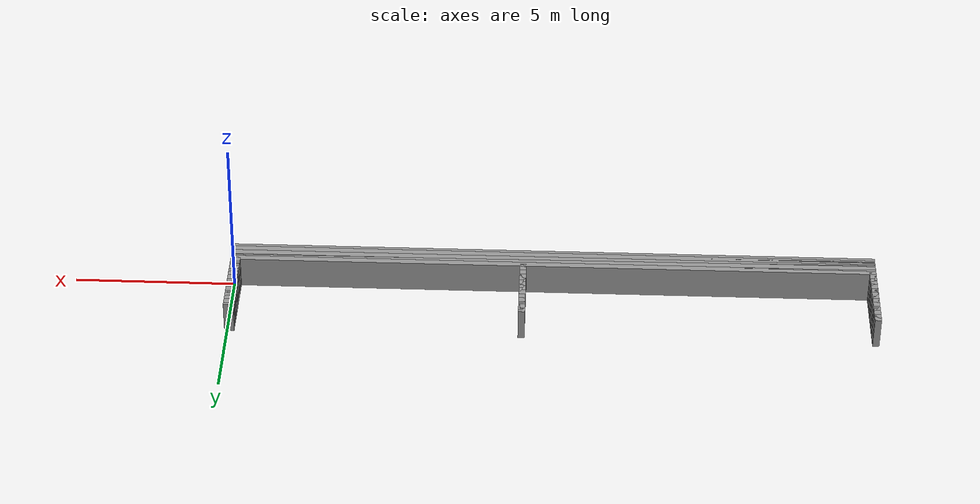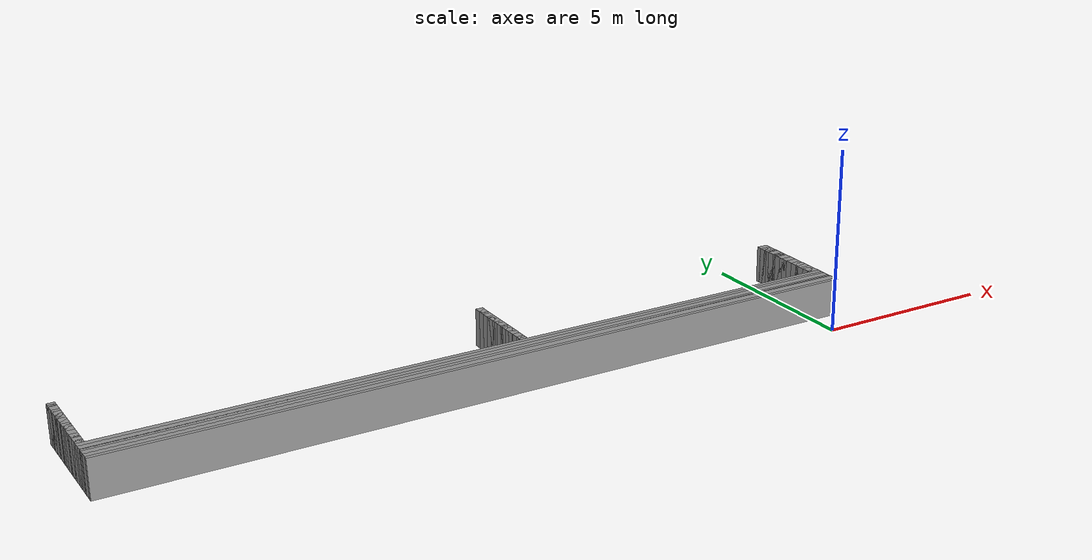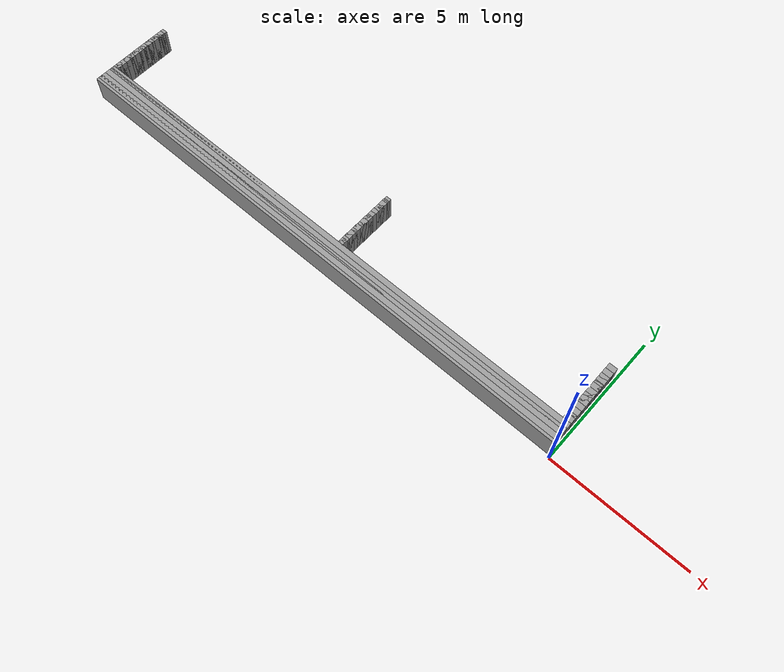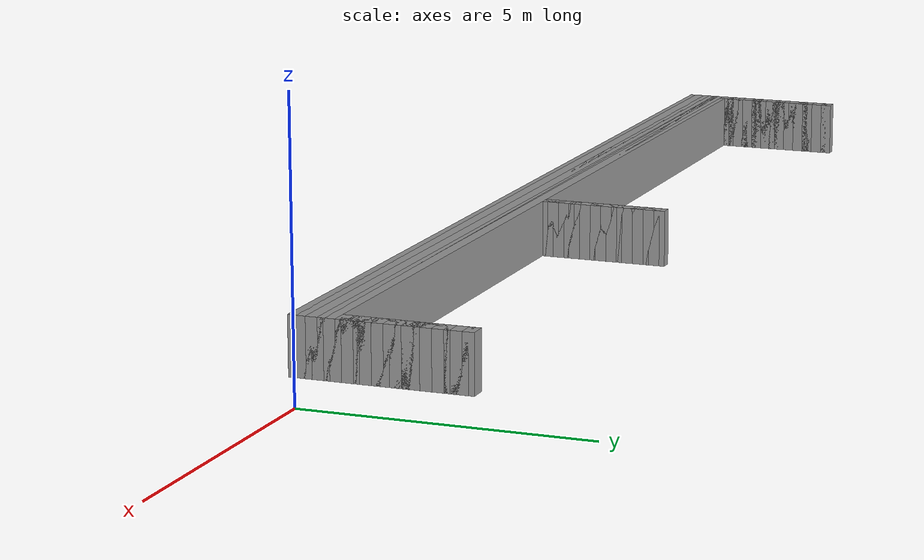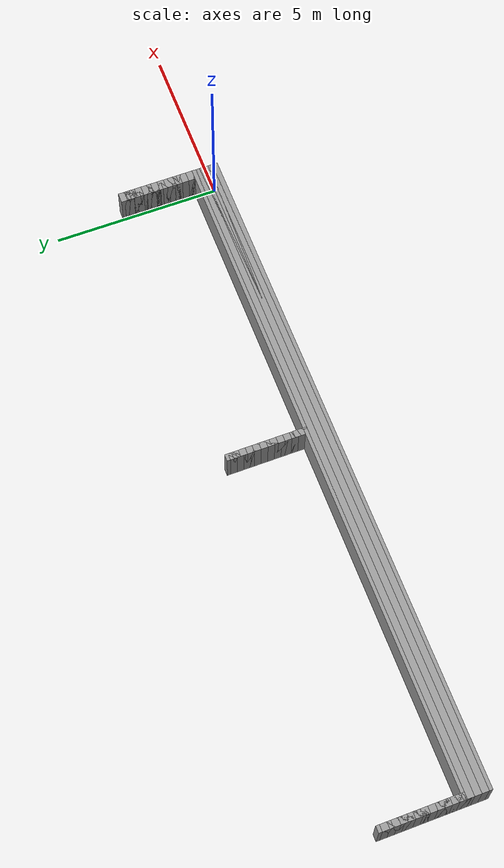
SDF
<sdf version="1.6">
 <world name="GridMap">
  <model name="GridMap">
   <link name="Wall_(99.5,0.0)">
    <collision name="Wall_(99.5,0.0)_Collision">
     <geometry><box><size>19.9 0.2 1.0</size></box></geometry>
     <pose>-9.95 0.0 0.5 0 -0 0</pose>
    </collision>
    <visual name="Wall_(99.5,0.0)_Visual">
     <geometry><box><size>19.9 0.2 1.0</size></box></geometry>
     <pose>-9.95 0.0 0.5 0 -0 0</pose>
     <material>
      <script><uri>file://media/materials/scripts/gazebo.material</uri><name>Gazebo/Grey</name></script>
      <ambient>1 1 1 1</ambient>
     </material>
     <meta><layer>0</layer></meta>
    </visual>
    <pose>0 0 0.5 0 -0 0</pose>
   </link>
   <link name="Wall_(99.5,1.0)">
    <collision name="Wall_(99.5,1.0)_Collision">
     <geometry><box><size>19.9 0.2 1.0</size></box></geometry>
     <pose>-9.95 0.1 0.5 0 -0 0</pose>
    </collision>
    <visual name="Wall_(99.5,1.0)_Visual">
     <geometry><box><size>19.9 0.2 1.0</size></box></geometry>
     <pose>-9.95 0.1 0.5 0 -0 0</pose>
     <material>
      <script><uri>file://media/materials/scripts/gazebo.material</uri><name>Gazebo/Grey</name></script>
      <ambient>1 1 1 1</ambient>
     </material>
     <meta><layer>0</layer></meta>
    </visual>
    <pose>0 0 0.5 0 -0 0</pose>
   </link>
   <link name="Wall_(99.5,2.0)">
    <collision name="Wall_(99.5,2.0)_Collision">
     <geometry><box><size>19.9 0.2 1.0</size></box></geometry>
     <pose>-9.95 0.2 0.5 0 -0 0</pose>
    </collision>
    <visual name="Wall_(99.5,2.0)_Visual">
     <geometry><box><size>19.9 0.2 1.0</size></box></geometry>
     <pose>-9.95 0.2 0.5 0 -0 0</pose>
     <material>
      <script><uri>file://media/materials/scripts/gazebo.material</uri><name>Gazebo/Grey</name></script>
      <ambient>1 1 1 1</ambient>
     </material>
     <meta><layer>0</layer></meta>
    </visual>
    <pose>0 0 0.5 0 -0 0</pose>
   </link>
   <link name="Wall_(99.5,3.0)">
    <collision name="Wall_(99.5,3.0)_Collision">
     <geometry><box><size>19.9 0.2 1.0</size></box></geometry>
     <pose>-9.95 0.3 0.5 0 -0 0</pose>
    </collision>
    <visual name="Wall_(99.5,3.0)_Visual">
     <geometry><box><size>19.9 0.2 1.0</size></box></geometry>
     <pose>-9.95 0.3 0.5 0 -0 0</pose>
     <material>
      <script><uri>file://media/materials/scripts/gazebo.material</uri><name>Gazebo/Grey</name></script>
      <ambient>1 1 1 1</ambient>
     </material>
     <meta><layer>0</layer></meta>
    </visual>
    <pose>0 0 0.5 0 -0 0</pose>
   </link>
   <link name="Wall_(99.5,4.0)">
    <collision name="Wall_(99.5,4.0)_Collision">
     <geometry><box><size>19.9 0.2 1.0</size></box></geometry>
     <pose>-9.95 0.4 0.5 0 -0 0</pose>
    </collision>
    <visual name="Wall_(99.5,4.0)_Visual">
     <geometry><box><size>19.9 0.2 1.0</size></box></geometry>
     <pose>-9.95 0.4 0.5 0 -0 0</pose>
     <material>
      <script><uri>file://media/materials/scripts/gazebo.material</uri><name>Gazebo/Grey</name></script>
      <ambient>1 1 1 1</ambient>
     </material>
     <meta><layer>0</layer></meta>
    </visual>
    <pose>0 0 0.5 0 -0 0</pose>
   </link>
   <link name="Wall_(99.5,5.0)">
    <collision name="Wall_(99.5,5.0)_Collision">
     <geometry><box><size>19.9 0.2 1.0</size></box></geometry>
     <pose>-9.95 0.5 0.5 0 -0 0</pose>
    </collision>
    <visual name="Wall_(99.5,5.0)_Visual">
     <geometry><box><size>19.9 0.2 1.0</size></box></geometry>
     <pose>-9.95 0.5 0.5 0 -0 0</pose>
     <material>
      <script><uri>file://media/materials/scripts/gazebo.material</uri><name>Gazebo/Grey</name></script>
      <ambient>1 1 1 1</ambient>
     </material>
     <meta><layer>0</layer></meta>
    </visual>
    <pose>0 0 0.5 0 -0 0</pose>
   </link>
   <link name="Wall_(99.5,6.0)">
    <collision name="Wall_(99.5,6.0)_Collision">
     <geometry><box><size>19.9 0.2 1.0</size></box></geometry>
     <pose>-9.95 0.6 0.5 0 -0 0</pose>
    </collision>
    <visual name="Wall_(99.5,6.0)_Visual">
     <geometry><box><size>19.9 0.2 1.0</size></box></geometry>
     <pose>-9.95 0.6 0.5 0 -0 0</pose>
     <material>
      <script><uri>file://media/materials/scripts/gazebo.material</uri><name>Gazebo/Grey</name></script>
      <ambient>1 1 1 1</ambient>
     </material>
     <meta><layer>0</layer></meta>
    </visual>
    <pose>0 0 0.5 0 -0 0</pose>
   </link>
   <link name="Wall_(1.5,7.0)">
    <collision name="Wall_(1.5,7.0)_Collision">
     <geometry><box><size>0.3 0.2 1.0</size></box></geometry>
     <pose>-0.15 0.7 0.5 0 -0 0</pose>
    </collision>
    <visual name="Wall_(1.5,7.0)_Visual">
     <geometry><box><size>0.3 0.2 1.0</size></box></geometry>
     <pose>-0.15 0.7 0.5 0 -0 0</pose>
     <material>
      <script><uri>file://media/materials/scripts/gazebo.material</uri><name>Gazebo/Grey</name></script>
      <ambient>1 1 1 1</ambient>
     </material>
     <meta><layer>0</layer></meta>
    </visual>
    <pose>0 0 0.5 0 -0 0</pose>
   </link>
   <link name="Wall_(90.5,7.0)">
    <collision name="Wall_(90.5,7.0)_Collision">
     <geometry><box><size>0.2 0.2 1.0</size></box></geometry>
     <pose>-9.05 0.7 0.5 0 -0 0</pose>
    </collision>
    <visual name="Wall_(90.5,7.0)_Visual">
     <geometry><box><size>0.2 0.2 1.0</size></box></geometry>
     <pose>-9.05 0.7 0.5 0 -0 0</pose>
     <material>
      <script><uri>file://media/materials/scripts/gazebo.material</uri><name>Gazebo/Grey</name></script>
      <ambient>1 1 1 1</ambient>
     </material>
     <meta><layer>0</layer></meta>
    </visual>
    <pose>0 0 0.5 0 -0 0</pose>
   </link>
   <link name="Wall_(198.0,7.0)">
    <collision name="Wall_(198.0,7.0)_Collision">
     <geometry><box><size>0.2 0.2 1.0</size></box></geometry>
     <pose>-19.8 0.7 0.5 0 -0 0</pose>
    </collision>
    <visual name="Wall_(198.0,7.0)_Visual">
     <geometry><box><size>0.2 0.2 1.0</size></box></geometry>
     <pose>-19.8 0.7 0.5 0 -0 0</pose>
     <material>
      <script><uri>file://media/materials/scripts/gazebo.material</uri><name>Gazebo/Grey</name></script>
      <ambient>1 1 1 1</ambient>
     </material>
     <meta><layer>0</layer></meta>
    </visual>
    <pose>0 0 0.5 0 -0 0</pose>
   </link>
   <link name="Wall_(1.5,8.0)">
    <collision name="Wall_(1.5,8.0)_Collision">
     <geometry><box><size>0.3 0.2 1.0</size></box></geometry>
     <pose>-0.15 0.8 0.5 0 -0 0</pose>
    </collision>
    <visual name="Wall_(1.5,8.0)_Visual">
     <geometry><box><size>0.3 0.2 1.0</size></box></geometry>
     <pose>-0.15 0.8 0.5 0 -0 0</pose>
     <material>
      <script><uri>file://media/materials/scripts/gazebo.material</uri><name>Gazebo/Grey</name></script>
      <ambient>1 1 1 1</ambient>
     </material>
     <meta><layer>0</layer></meta>
    </visual>
    <pose>0 0 0.5 0 -0 0</pose>
   </link>
   <link name="Wall_(90.5,8.0)">
    <collision name="Wall_(90.5,8.0)_Collision">
     <geometry><box><size>0.2 0.2 1.0</size></box></geometry>
     <pose>-9.05 0.8 0.5 0 -0 0</pose>
    </collision>
    <visual name="Wall_(90.5,8.0)_Visual">
     <geometry><box><size>0.2 0.2 1.0</size></box></geometry>
     <pose>-9.05 0.8 0.5 0 -0 0</pose>
     <material>
      <script><uri>file://media/materials/scripts/gazebo.material</uri><name>Gazebo/Grey</name></script>
      <ambient>1 1 1 1</ambient>
     </material>
     <meta><layer>0</layer></meta>
    </visual>
    <pose>0 0 0.5 0 -0 0</pose>
   </link>
   <link name="Wall_(198.0,8.0)">
    <collision name="Wall_(198.0,8.0)_Collision">
     <geometry><box><size>0.2 0.2 1.0</size></box></geometry>
     <pose>-19.8 0.8 0.5 0 -0 0</pose>
    </collision>
    <visual name="Wall_(198.0,8.0)_Visual">
     <geometry><box><size>0.2 0.2 1.0</size></box></geometry>
     <pose>-19.8 0.8 0.5 0 -0 0</pose>
     <material>
      <script><uri>file://media/materials/scripts/gazebo.material</uri><name>Gazebo/Grey</name></script>
      <ambient>1 1 1 1</ambient>
     </material>
     <meta><layer>0</layer></meta>
    </visual>
    <pose>0 0 0.5 0 -0 0</pose>
   </link>
   <link name="Wall_(1.5,9.0)">
    <collision name="Wall_(1.5,9.0)_Collision">
     <geometry><box><size>0.3 0.2 1.0</size></box></geometry>
     <pose>-0.15 0.9 0.5 0 -0 0</pose>
    </collision>
    <visual name="Wall_(1.5,9.0)_Visual">
     <geometry><box><size>0.3 0.2 1.0</size></box></geometry>
     <pose>-0.15 0.9 0.5 0 -0 0</pose>
     <material>
      <script><uri>file://media/materials/scripts/gazebo.material</uri><name>Gazebo/Grey</name></script>
      <ambient>1 1 1 1</ambient>
     </material>
     <meta><layer>0</layer></meta>
    </visual>
    <pose>0 0 0.5 0 -0 0</pose>
   </link>
   <link name="Wall_(90.5,9.0)">
    <collision name="Wall_(90.5,9.0)_Collision">
     <geometry><box><size>0.2 0.2 1.0</size></box></geometry>
     <pose>-9.05 0.9 0.5 0 -0 0</pose>
    </collision>
    <visual name="Wall_(90.5,9.0)_Visual">
     <geometry><box><size>0.2 0.2 1.0</size></box></geometry>
     <pose>-9.05 0.9 0.5 0 -0 0</pose>
     <material>
      <script><uri>file://media/materials/scripts/gazebo.material</uri><name>Gazebo/Grey</name></script>
      <ambient>1 1 1 1</ambient>
     </material>
     <meta><layer>0</layer></meta>
    </visual>
    <pose>0 0 0.5 0 -0 0</pose>
   </link>
   <link name="Wall_(198.0,9.0)">
    <collision name="Wall_(198.0,9.0)_Collision">
     <geometry><box><size>0.2 0.2 1.0</size></box></geometry>
     <pose>-19.8 0.9 0.5 0 -0 0</pose>
    </collision>
    <visual name="Wall_(198.0,9.0)_Visual">
     <geometry><box><size>0.2 0.2 1.0</size></box></geometry>
     <pose>-19.8 0.9 0.5 0 -0 0</pose>
     <material>
      <script><uri>file://media/materials/scripts/gazebo.material</uri><name>Gazebo/Grey</name></script>
      <ambient>1 1 1 1</ambient>
     </material>
     <meta><layer>0</layer></meta>
    </visual>
    <pose>0 0 0.5 0 -0 0</pose>
   </link>
   <link name="Wall_(1.5,10.0)">
    <collision name="Wall_(1.5,10.0)_Collision">
     <geometry><box><size>0.3 0.2 1.0</size></box></geometry>
     <pose>-0.15 1.0 0.5 0 -0 0</pose>
    </collision>
    <visual name="Wall_(1.5,10.0)_Visual">
     <geometry><box><size>0.3 0.2 1.0</size></box></geometry>
     <pose>-0.15 1.0 0.5 0 -0 0</pose>
     <material>
      <script><uri>file://media/materials/scripts/gazebo.material</uri><name>Gazebo/Grey</name></script>
      <ambient>1 1 1 1</ambient>
     </material>
     <meta><layer>0</layer></meta>
    </visual>
    <pose>0 0 0.5 0 -0 0</pose>
   </link>
   <link name="Wall_(90.5,10.0)">
    <collision name="Wall_(90.5,10.0)_Collision">
     <geometry><box><size>0.2 0.2 1.0</size></box></geometry>
     <pose>-9.05 1.0 0.5 0 -0 0</pose>
    </collision>
    <visual name="Wall_(90.5,10.0)_Visual">
     <geometry><box><size>0.2 0.2 1.0</size></box></geometry>
     <pose>-9.05 1.0 0.5 0 -0 0</pose>
     <material>
      <script><uri>file://media/materials/scripts/gazebo.material</uri><name>Gazebo/Grey</name></script>
      <ambient>1 1 1 1</ambient>
     </material>
     <meta><layer>0</layer></meta>
    </visual>
    <pose>0 0 0.5 0 -0 0</pose>
   </link>
   <link name="Wall_(198.0,10.0)">
    <collision name="Wall_(198.0,10.0)_Collision">
     <geometry><box><size>0.2 0.2 1.0</size></box></geometry>
     <pose>-19.8 1.0 0.5 0 -0 0</pose>
    </collision>
    <visual name="Wall_(198.0,10.0)_Visual">
     <geometry><box><size>0.2 0.2 1.0</size></box></geometry>
     <pose>-19.8 1.0 0.5 0 -0 0</pose>
     <material>
      <script><uri>file://media/materials/scripts/gazebo.material</uri><name>Gazebo/Grey</name></script>
      <ambient>1 1 1 1</ambient>
     </material>
     <meta><layer>0</layer></meta>
    </visual>
    <pose>0 0 0.5 0 -0 0</pose>
   </link>
   <link name="Wall_(1.5,11.0)">
    <collision name="Wall_(1.5,11.0)_Collision">
     <geometry><box><size>0.3 0.2 1.0</size></box></geometry>
     <pose>-0.15 1.1 0.5 0 -0 0</pose>
    </collision>
    <visual name="Wall_(1.5,11.0)_Visual">
     <geometry><box><size>0.3 0.2 1.0</size></box></geometry>
     <pose>-0.15 1.1 0.5 0 -0 0</pose>
     <material>
      <script><uri>file://media/materials/scripts/gazebo.material</uri><name>Gazebo/Grey</name></script>
      <ambient>1 1 1 1</ambient>
     </material>
     <meta><layer>0</layer></meta>
    </visual>
    <pose>0 0 0.5 0 -0 0</pose>
   </link>
   <link name="Wall_(90.5,11.0)">
    <collision name="Wall_(90.5,11.0)_Collision">
     <geometry><box><size>0.2 0.2 1.0</size></box></geometry>
     <pose>-9.05 1.1 0.5 0 -0 0</pose>
    </collision>
    <visual name="Wall_(90.5,11.0)_Visual">
     <geometry><box><size>0.2 0.2 1.0</size></box></geometry>
     <pose>-9.05 1.1 0.5 0 -0 0</pose>
     <material>
      <script><uri>file://media/materials/scripts/gazebo.material</uri><name>Gazebo/Grey</name></script>
      <ambient>1 1 1 1</ambient>
     </material>
     <meta><layer>0</layer></meta>
    </visual>
    <pose>0 0 0.5 0 -0 0</pose>
   </link>
   <link name="Wall_(198.0,11.0)">
    <collision name="Wall_(198.0,11.0)_Collision">
     <geometry><box><size>0.2 0.2 1.0</size></box></geometry>
     <pose>-19.8 1.1 0.5 0 -0 0</pose>
    </collision>
    <visual name="Wall_(198.0,11.0)_Visual">
     <geometry><box><size>0.2 0.2 1.0</size></box></geometry>
     <pose>-19.8 1.1 0.5 0 -0 0</pose>
     <material>
      <script><uri>file://media/materials/scripts/gazebo.material</uri><name>Gazebo/Grey</name></script>
      <ambient>1 1 1 1</ambient>
     </material>
     <meta><layer>0</layer></meta>
    </visual>
    <pose>0 0 0.5 0 -0 0</pose>
   </link>
   <link name="Wall_(1.5,12.0)">
    <collision name="Wall_(1.5,12.0)_Collision">
     <geometry><box><size>0.3 0.2 1.0</size></box></geometry>
     <pose>-0.15 1.2 0.5 0 -0 0</pose>
    </collision>
    <visual name="Wall_(1.5,12.0)_Visual">
     <geometry><box><size>0.3 0.2 1.0</size></box></geometry>
     <pose>-0.15 1.2 0.5 0 -0 0</pose>
     <material>
      <script><uri>file://media/materials/scripts/gazebo.material</uri><name>Gazebo/Grey</name></script>
      <ambient>1 1 1 1</ambient>
     </material>
     <meta><layer>0</layer></meta>
    </visual>
    <pose>0 0 0.5 0 -0 0</pose>
   </link>
   <link name="Wall_(90.5,12.0)">
    <collision name="Wall_(90.5,12.0)_Collision">
     <geometry><box><size>0.2 0.2 1.0</size></box></geometry>
     <pose>-9.05 1.2 0.5 0 -0 0</pose>
    </collision>
    <visual name="Wall_(90.5,12.0)_Visual">
     <geometry><box><size>0.2 0.2 1.0</size></box></geometry>
     <pose>-9.05 1.2 0.5 0 -0 0</pose>
     <material>
      <script><uri>file://media/materials/scripts/gazebo.material</uri><name>Gazebo/Grey</name></script>
      <ambient>1 1 1 1</ambient>
     </material>
     <meta><layer>0</layer></meta>
    </visual>
    <pose>0 0 0.5 0 -0 0</pose>
   </link>
   <link name="Wall_(198.0,12.0)">
    <collision name="Wall_(198.0,12.0)_Collision">
     <geometry><box><size>0.2 0.2 1.0</size></box></geometry>
     <pose>-19.8 1.2 0.5 0 -0 0</pose>
    </collision>
    <visual name="Wall_(198.0,12.0)_Visual">
     <geometry><box><size>0.2 0.2 1.0</size></box></geometry>
     <pose>-19.8 1.2 0.5 0 -0 0</pose>
     <material>
      <script><uri>file://media/materials/scripts/gazebo.material</uri><name>Gazebo/Grey</name></script>
      <ambient>1 1 1 1</ambient>
     </material>
     <meta><layer>0</layer></meta>
    </visual>
    <pose>0 0 0.5 0 -0 0</pose>
   </link>
   <link name="Wall_(1.5,13.0)">
    <collision name="Wall_(1.5,13.0)_Collision">
     <geometry><box><size>0.3 0.2 1.0</size></box></geometry>
     <pose>-0.15 1.3 0.5 0 -0 0</pose>
    </collision>
    <visual name="Wall_(1.5,13.0)_Visual">
     <geometry><box><size>0.3 0.2 1.0</size></box></geometry>
     <pose>-0.15 1.3 0.5 0 -0 0</pose>
     <material>
      <script><uri>file://media/materials/scripts/gazebo.material</uri><name>Gazebo/Grey</name></script>
      <ambient>1 1 1 1</ambient>
     </material>
     <meta><layer>0</layer></meta>
    </visual>
    <pose>0 0 0.5 0 -0 0</pose>
   </link>
   <link name="Wall_(90.5,13.0)">
    <collision name="Wall_(90.5,13.0)_Collision">
     <geometry><box><size>0.2 0.2 1.0</size></box></geometry>
     <pose>-9.05 1.3 0.5 0 -0 0</pose>
    </collision>
    <visual name="Wall_(90.5,13.0)_Visual">
     <geometry><box><size>0.2 0.2 1.0</size></box></geometry>
     <pose>-9.05 1.3 0.5 0 -0 0</pose>
     <material>
      <script><uri>file://media/materials/scripts/gazebo.material</uri><name>Gazebo/Grey</name></script>
      <ambient>1 1 1 1</ambient>
     </material>
     <meta><layer>0</layer></meta>
    </visual>
    <pose>0 0 0.5 0 -0 0</pose>
   </link>
   <link name="Wall_(198.0,13.0)">
    <collision name="Wall_(198.0,13.0)_Collision">
     <geometry><box><size>0.2 0.2 1.0</size></box></geometry>
     <pose>-19.8 1.3 0.5 0 -0 0</pose>
    </collision>
    <visual name="Wall_(198.0,13.0)_Visual">
     <geometry><box><size>0.2 0.2 1.0</size></box></geometry>
     <pose>-19.8 1.3 0.5 0 -0 0</pose>
     <material>
      <script><uri>file://media/materials/scripts/gazebo.material</uri><name>Gazebo/Grey</name></script>
      <ambient>1 1 1 1</ambient>
     </material>
     <meta><layer>0</layer></meta>
    </visual>
    <pose>0 0 0.5 0 -0 0</pose>
   </link>
   <link name="Wall_(1.5,14.0)">
    <collision name="Wall_(1.5,14.0)_Collision">
     <geometry><box><size>0.3 0.2 1.0</size></box></geometry>
     <pose>-0.15 1.4 0.5 0 -0 0</pose>
    </collision>
    <visual name="Wall_(1.5,14.0)_Visual">
     <geometry><box><size>0.3 0.2 1.0</size></box></geometry>
     <pose>-0.15 1.4 0.5 0 -0 0</pose>
     <material>
      <script><uri>file://media/materials/scripts/gazebo.material</uri><name>Gazebo/Grey</name></script>
      <ambient>1 1 1 1</ambient>
     </material>
     <meta><layer>0</layer></meta>
    </visual>
    <pose>0 0 0.5 0 -0 0</pose>
   </link>
   <link name="Wall_(90.5,14.0)">
    <collision name="Wall_(90.5,14.0)_Collision">
     <geometry><box><size>0.2 0.2 1.0</size></box></geometry>
     <pose>-9.05 1.4 0.5 0 -0 0</pose>
    </collision>
    <visual name="Wall_(90.5,14.0)_Visual">
     <geometry><box><size>0.2 0.2 1.0</size></box></geometry>
     <pose>-9.05 1.4 0.5 0 -0 0</pose>
     <material>
      <script><uri>file://media/materials/scripts/gazebo.material</uri><name>Gazebo/Grey</name></script>
      <ambient>1 1 1 1</ambient>
     </material>
     <meta><layer>0</layer></meta>
    </visual>
    <pose>0 0 0.5 0 -0 0</pose>
   </link>
   <link name="Wall_(198.0,14.0)">
    <collision name="Wall_(198.0,14.0)_Collision">
     <geometry><box><size>0.2 0.2 1.0</size></box></geometry>
     <pose>-19.8 1.4 0.5 0 -0 0</pose>
    </collision>
    <visual name="Wall_(198.0,14.0)_Visual">
     <geometry><box><size>0.2 0.2 1.0</size></box></geometry>
     <pose>-19.8 1.4 0.5 0 -0 0</pose>
     <material>
      <script><uri>file://media/materials/scripts/gazebo.material</uri><name>Gazebo/Grey</name></script>
      <ambient>1 1 1 1</ambient>
     </material>
     <meta><layer>0</layer></meta>
    </visual>
    <pose>0 0 0.5 0 -0 0</pose>
   </link>
   <link name="Wall_(1.5,15.0)">
    <collision name="Wall_(1.5,15.0)_Collision">
     <geometry><box><size>0.3 0.2 1.0</size></box></geometry>
     <pose>-0.15 1.5 0.5 0 -0 0</pose>
    </collision>
    <visual name="Wall_(1.5,15.0)_Visual">
     <geometry><box><size>0.3 0.2 1.0</size></box></geometry>
     <pose>-0.15 1.5 0.5 0 -0 0</pose>
     <material>
      <script><uri>file://media/materials/scripts/gazebo.material</uri><name>Gazebo/Grey</name></script>
      <ambient>1 1 1 1</ambient>
     </material>
     <meta><layer>0</layer></meta>
    </visual>
    <pose>0 0 0.5 0 -0 0</pose>
   </link>
   <link name="Wall_(90.5,15.0)">
    <collision name="Wall_(90.5,15.0)_Collision">
     <geometry><box><size>0.2 0.2 1.0</size></box></geometry>
     <pose>-9.05 1.5 0.5 0 -0 0</pose>
    </collision>
    <visual name="Wall_(90.5,15.0)_Visual">
     <geometry><box><size>0.2 0.2 1.0</size></box></geometry>
     <pose>-9.05 1.5 0.5 0 -0 0</pose>
     <material>
      <script><uri>file://media/materials/scripts/gazebo.material</uri><name>Gazebo/Grey</name></script>
      <ambient>1 1 1 1</ambient>
     </material>
     <meta><layer>0</layer></meta>
    </visual>
    <pose>0 0 0.5 0 -0 0</pose>
   </link>
   <link name="Wall_(198.0,15.0)">
    <collision name="Wall_(198.0,15.0)_Collision">
     <geometry><box><size>0.2 0.2 1.0</size></box></geometry>
     <pose>-19.8 1.5 0.5 0 -0 0</pose>
    </collision>
    <visual name="Wall_(198.0,15.0)_Visual">
     <geometry><box><size>0.2 0.2 1.0</size></box></geometry>
     <pose>-19.8 1.5 0.5 0 -0 0</pose>
     <material>
      <script><uri>file://media/materials/scripts/gazebo.material</uri><name>Gazebo/Grey</name></script>
      <ambient>1 1 1 1</ambient>
     </material>
     <meta><layer>0</layer></meta>
    </visual>
    <pose>0 0 0.5 0 -0 0</pose>
   </link>
   <link name="Wall_(1.5,16.0)">
    <collision name="Wall_(1.5,16.0)_Collision">
     <geometry><box><size>0.3 0.2 1.0</size></box></geometry>
     <pose>-0.15 1.6 0.5 0 -0 0</pose>
    </collision>
    <visual name="Wall_(1.5,16.0)_Visual">
     <geometry><box><size>0.3 0.2 1.0</size></box></geometry>
     <pose>-0.15 1.6 0.5 0 -0 0</pose>
     <material>
      <script><uri>file://media/materials/scripts/gazebo.material</uri><name>Gazebo/Grey</name></script>
      <ambient>1 1 1 1</ambient>
     </material>
     <meta><layer>0</layer></meta>
    </visual>
    <pose>0 0 0.5 0 -0 0</pose>
   </link>
   <link name="Wall_(90.5,16.0)">
    <collision name="Wall_(90.5,16.0)_Collision">
     <geometry><box><size>0.2 0.2 1.0</size></box></geometry>
     <pose>-9.05 1.6 0.5 0 -0 0</pose>
    </collision>
    <visual name="Wall_(90.5,16.0)_Visual">
     <geometry><box><size>0.2 0.2 1.0</size></box></geometry>
     <pose>-9.05 1.6 0.5 0 -0 0</pose>
     <material>
      <script><uri>file://media/materials/scripts/gazebo.material</uri><name>Gazebo/Grey</name></script>
      <ambient>1 1 1 1</ambient>
     </material>
     <meta><layer>0</layer></meta>
    </visual>
    <pose>0 0 0.5 0 -0 0</pose>
   </link>
   <link name="Wall_(198.0,16.0)">
    <collision name="Wall_(198.0,16.0)_Collision">
     <geometry><box><size>0.2 0.2 1.0</size></box></geometry>
     <pose>-19.8 1.6 0.5 0 -0 0</pose>
    </collision>
    <visual name="Wall_(198.0,16.0)_Visual">
     <geometry><box><size>0.2 0.2 1.0</size></box></geometry>
     <pose>-19.8 1.6 0.5 0 -0 0</pose>
     <material>
      <script><uri>file://media/materials/scripts/gazebo.material</uri><name>Gazebo/Grey</name></script>
      <ambient>1 1 1 1</ambient>
     </material>
     <meta><layer>0</layer></meta>
    </visual>
    <pose>0 0 0.5 0 -0 0</pose>
   </link>
   <link name="Wall_(1.5,17.0)">
    <collision name="Wall_(1.5,17.0)_Collision">
     <geometry><box><size>0.3 0.2 1.0</size></box></geometry>
     <pose>-0.15 1.7 0.5 0 -0 0</pose>
    </collision>
    <visual name="Wall_(1.5,17.0)_Visual">
     <geometry><box><size>0.3 0.2 1.0</size></box></geometry>
     <pose>-0.15 1.7 0.5 0 -0 0</pose>
     <material>
      <script><uri>file://media/materials/scripts/gazebo.material</uri><name>Gazebo/Grey</name></script>
      <ambient>1 1 1 1</ambient>
     </material>
     <meta><layer>0</layer></meta>
    </visual>
    <pose>0 0 0.5 0 -0 0</pose>
   </link>
   <link name="Wall_(90.5,17.0)">
    <collision name="Wall_(90.5,17.0)_Collision">
     <geometry><box><size>0.2 0.2 1.0</size></box></geometry>
     <pose>-9.05 1.7 0.5 0 -0 0</pose>
    </collision>
    <visual name="Wall_(90.5,17.0)_Visual">
     <geometry><box><size>0.2 0.2 1.0</size></box></geometry>
     <pose>-9.05 1.7 0.5 0 -0 0</pose>
     <material>
      <script><uri>file://media/materials/scripts/gazebo.material</uri><name>Gazebo/Grey</name></script>
      <ambient>1 1 1 1</ambient>
     </material>
     <meta><layer>0</layer></meta>
    </visual>
    <pose>0 0 0.5 0 -0 0</pose>
   </link>
   <link name="Wall_(198.0,17.0)">
    <collision name="Wall_(198.0,17.0)_Collision">
     <geometry><box><size>0.2 0.2 1.0</size></box></geometry>
     <pose>-19.8 1.7 0.5 0 -0 0</pose>
    </collision>
    <visual name="Wall_(198.0,17.0)_Visual">
     <geometry><box><size>0.2 0.2 1.0</size></box></geometry>
     <pose>-19.8 1.7 0.5 0 -0 0</pose>
     <material>
      <script><uri>file://media/materials/scripts/gazebo.material</uri><name>Gazebo/Grey</name></script>
      <ambient>1 1 1 1</ambient>
     </material>
     <meta><layer>0</layer></meta>
    </visual>
    <pose>0 0 0.5 0 -0 0</pose>
   </link>
   <link name="Wall_(1.5,18.0)">
    <collision name="Wall_(1.5,18.0)_Collision">
     <geometry><box><size>0.3 0.2 1.0</size></box></geometry>
     <pose>-0.15 1.8 0.5 0 -0 0</pose>
    </collision>
    <visual name="Wall_(1.5,18.0)_Visual">
     <geometry><box><size>0.3 0.2 1.0</size></box></geometry>
     <pose>-0.15 1.8 0.5 0 -0 0</pose>
     <material>
      <script><uri>file://media/materials/scripts/gazebo.material</uri><name>Gazebo/Grey</name></script>
      <ambient>1 1 1 1</ambient>
     </material>
     <meta><layer>0</layer></meta>
    </visual>
    <pose>0 0 0.5 0 -0 0</pose>
   </link>
   <link name="Wall_(90.5,18.0)">
    <collision name="Wall_(90.5,18.0)_Collision">
     <geometry><box><size>0.2 0.2 1.0</size></box></geometry>
     <pose>-9.05 1.8 0.5 0 -0 0</pose>
    </collision>
    <visual name="Wall_(90.5,18.0)_Visual">
     <geometry><box><size>0.2 0.2 1.0</size></box></geometry>
     <pose>-9.05 1.8 0.5 0 -0 0</pose>
     <material>
      <script><uri>file://media/materials/scripts/gazebo.material</uri><name>Gazebo/Grey</name></script>
      <ambient>1 1 1 1</ambient>
     </material>
     <meta><layer>0</layer></meta>
    </visual>
    <pose>0 0 0.5 0 -0 0</pose>
   </link>
   <link name="Wall_(198.0,18.0)">
    <collision name="Wall_(198.0,18.0)_Collision">
     <geometry><box><size>0.2 0.2 1.0</size></box></geometry>
     <pose>-19.8 1.8 0.5 0 -0 0</pose>
    </collision>
    <visual name="Wall_(198.0,18.0)_Visual">
     <geometry><box><size>0.2 0.2 1.0</size></box></geometry>
     <pose>-19.8 1.8 0.5 0 -0 0</pose>
     <material>
      <script><uri>file://media/materials/scripts/gazebo.material</uri><name>Gazebo/Grey</name></script>
      <ambient>1 1 1 1</ambient>
     </material>
     <meta><layer>0</layer></meta>
    </visual>
    <pose>0 0 0.5 0 -0 0</pose>
   </link>
   <link name="Wall_(1.5,19.0)">
    <collision name="Wall_(1.5,19.0)_Collision">
     <geometry><box><size>0.3 0.2 1.0</size></box></geometry>
     <pose>-0.15 1.9 0.5 0 -0 0</pose>
    </collision>
    <visual name="Wall_(1.5,19.0)_Visual">
     <geometry><box><size>0.3 0.2 1.0</size></box></geometry>
     <pose>-0.15 1.9 0.5 0 -0 0</pose>
     <material>
      <script><uri>file://media/materials/scripts/gazebo.material</uri><name>Gazebo/Grey</name></script>
      <ambient>1 1 1 1</ambient>
     </material>
     <meta><layer>0</layer></meta>
    </visual>
    <pose>0 0 0.5 0 -0 0</pose>
   </link>
   <link name="Wall_(90.5,19.0)">
    <collision name="Wall_(90.5,19.0)_Collision">
     <geometry><box><size>0.2 0.2 1.0</size></box></geometry>
     <pose>-9.05 1.9 0.5 0 -0 0</pose>
    </collision>
    <visual name="Wall_(90.5,19.0)_Visual">
     <geometry><box><size>0.2 0.2 1.0</size></box></geometry>
     <pose>-9.05 1.9 0.5 0 -0 0</pose>
     <material>
      <script><uri>file://media/materials/scripts/gazebo.material</uri><name>Gazebo/Grey</name></script>
      <ambient>1 1 1 1</ambient>
     </material>
     <meta><layer>0</layer></meta>
    </visual>
    <pose>0 0 0.5 0 -0 0</pose>
   </link>
   <link name="Wall_(198.0,19.0)">
    <collision name="Wall_(198.0,19.0)_Collision">
     <geometry><box><size>0.2 0.2 1.0</size></box></geometry>
     <pose>-19.8 1.9 0.5 0 -0 0</pose>
    </collision>
    <visual name="Wall_(198.0,19.0)_Visual">
     <geometry><box><size>0.2 0.2 1.0</size></box></geometry>
     <pose>-19.8 1.9 0.5 0 -0 0</pose>
     <material>
      <script><uri>file://media/materials/scripts/gazebo.material</uri><name>Gazebo/Grey</name></script>
      <ambient>1 1 1 1</ambient>
     </material>
     <meta><layer>0</layer></meta>
    </visual>
    <pose>0 0 0.5 0 -0 0</pose>
   </link>
   <link name="Wall_(1.5,20.0)">
    <collision name="Wall_(1.5,20.0)_Collision">
     <geometry><box><size>0.3 0.2 1.0</size></box></geometry>
     <pose>-0.15 2.0 0.5 0 -0 0</pose>
    </collision>
    <visual name="Wall_(1.5,20.0)_Visual">
     <geometry><box><size>0.3 0.2 1.0</size></box></geometry>
     <pose>-0.15 2.0 0.5 0 -0 0</pose>
     <material>
      <script><uri>file://media/materials/scripts/gazebo.material</uri><name>Gazebo/Grey</name></script>
      <ambient>1 1 1 1</ambient>
     </material>
     <meta><layer>0</layer></meta>
    </visual>
    <pose>0 0 0.5 0 -0 0</pose>
   </link>
   <link name="Wall_(90.5,20.0)">
    <collision name="Wall_(90.5,20.0)_Collision">
     <geometry><box><size>0.2 0.2 1.0</size></box></geometry>
     <pose>-9.05 2.0 0.5 0 -0 0</pose>
    </collision>
    <visual name="Wall_(90.5,20.0)_Visual">
     <geometry><box><size>0.2 0.2 1.0</size></box></geometry>
     <pose>-9.05 2.0 0.5 0 -0 0</pose>
     <material>
      <script><uri>file://media/materials/scripts/gazebo.material</uri><name>Gazebo/Grey</name></script>
      <ambient>1 1 1 1</ambient>
     </material>
     <meta><layer>0</layer></meta>
    </visual>
    <pose>0 0 0.5 0 -0 0</pose>
   </link>
   <link name="Wall_(198.0,20.0)">
    <collision name="Wall_(198.0,20.0)_Collision">
     <geometry><box><size>0.2 0.2 1.0</size></box></geometry>
     <pose>-19.8 2.0 0.5 0 -0 0</pose>
    </collision>
    <visual name="Wall_(198.0,20.0)_Visual">
     <geometry><box><size>0.2 0.2 1.0</size></box></geometry>
     <pose>-19.8 2.0 0.5 0 -0 0</pose>
     <material>
      <script><uri>file://media/materials/scripts/gazebo.material</uri><name>Gazebo/Grey</name></script>
      <ambient>1 1 1 1</ambient>
     </material>
     <meta><layer>0</layer></meta>
    </visual>
    <pose>0 0 0.5 0 -0 0</pose>
   </link>
   <link name="Wall_(1.5,21.0)">
    <collision name="Wall_(1.5,21.0)_Collision">
     <geometry><box><size>0.3 0.2 1.0</size></box></geometry>
     <pose>-0.15 2.1 0.5 0 -0 0</pose>
    </collision>
    <visual name="Wall_(1.5,21.0)_Visual">
     <geometry><box><size>0.3 0.2 1.0</size></box></geometry>
     <pose>-0.15 2.1 0.5 0 -0 0</pose>
     <material>
      <script><uri>file://media/materials/scripts/gazebo.material</uri><name>Gazebo/Grey</name></script>
      <ambient>1 1 1 1</ambient>
     </material>
     <meta><layer>0</layer></meta>
    </visual>
    <pose>0 0 0.5 0 -0 0</pose>
   </link>
   <link name="Wall_(90.5,21.0)">
    <collision name="Wall_(90.5,21.0)_Collision">
     <geometry><box><size>0.2 0.2 1.0</size></box></geometry>
     <pose>-9.05 2.1 0.5 0 -0 0</pose>
    </collision>
    <visual name="Wall_(90.5,21.0)_Visual">
     <geometry><box><size>0.2 0.2 1.0</size></box></geometry>
     <pose>-9.05 2.1 0.5 0 -0 0</pose>
     <material>
      <script><uri>file://media/materials/scripts/gazebo.material</uri><name>Gazebo/Grey</name></script>
      <ambient>1 1 1 1</ambient>
     </material>
     <meta><layer>0</layer></meta>
    </visual>
    <pose>0 0 0.5 0 -0 0</pose>
   </link>
   <link name="Wall_(198.0,21.0)">
    <collision name="Wall_(198.0,21.0)_Collision">
     <geometry><box><size>0.2 0.2 1.0</size></box></geometry>
     <pose>-19.8 2.1 0.5 0 -0 0</pose>
    </collision>
    <visual name="Wall_(198.0,21.0)_Visual">
     <geometry><box><size>0.2 0.2 1.0</size></box></geometry>
     <pose>-19.8 2.1 0.5 0 -0 0</pose>
     <material>
      <script><uri>file://media/materials/scripts/gazebo.material</uri><name>Gazebo/Grey</name></script>
      <ambient>1 1 1 1</ambient>
     </material>
     <meta><layer>0</layer></meta>
    </visual>
    <pose>0 0 0.5 0 -0 0</pose>
   </link>
   <link name="Wall_(1.5,22.0)">
    <collision name="Wall_(1.5,22.0)_Collision">
     <geometry><box><size>0.3 0.2 1.0</size></box></geometry>
     <pose>-0.15 2.2 0.5 0 -0 0</pose>
    </collision>
    <visual name="Wall_(1.5,22.0)_Visual">
     <geometry><box><size>0.3 0.2 1.0</size></box></geometry>
     <pose>-0.15 2.2 0.5 0 -0 0</pose>
     <material>
      <script><uri>file://media/materials/scripts/gazebo.material</uri><name>Gazebo/Grey</name></script>
      <ambient>1 1 1 1</ambient>
     </material>
     <meta><layer>0</layer></meta>
    </visual>
    <pose>0 0 0.5 0 -0 0</pose>
   </link>
   <link name="Wall_(90.5,22.0)">
    <collision name="Wall_(90.5,22.0)_Collision">
     <geometry><box><size>0.2 0.2 1.0</size></box></geometry>
     <pose>-9.05 2.2 0.5 0 -0 0</pose>
    </collision>
    <visual name="Wall_(90.5,22.0)_Visual">
     <geometry><box><size>0.2 0.2 1.0</size></box></geometry>
     <pose>-9.05 2.2 0.5 0 -0 0</pose>
     <material>
      <script><uri>file://media/materials/scripts/gazebo.material</uri><name>Gazebo/Grey</name></script>
      <ambient>1 1 1 1</ambient>
     </material>
     <meta><layer>0</layer></meta>
    </visual>
    <pose>0 0 0.5 0 -0 0</pose>
   </link>
   <link name="Wall_(198.0,22.0)">
    <collision name="Wall_(198.0,22.0)_Collision">
     <geometry><box><size>0.2 0.2 1.0</size></box></geometry>
     <pose>-19.8 2.2 0.5 0 -0 0</pose>
    </collision>
    <visual name="Wall_(198.0,22.0)_Visual">
     <geometry><box><size>0.2 0.2 1.0</size></box></geometry>
     <pose>-19.8 2.2 0.5 0 -0 0</pose>
     <material>
      <script><uri>file://media/materials/scripts/gazebo.material</uri><name>Gazebo/Grey</name></script>
      <ambient>1 1 1 1</ambient>
     </material>
     <meta><layer>0</layer></meta>
    </visual>
    <pose>0 0 0.5 0 -0 0</pose>
   </link>
   <link name="Wall_(1.5,23.0)">
    <collision name="Wall_(1.5,23.0)_Collision">
     <geometry><box><size>0.3 0.2 1.0</size></box></geometry>
     <pose>-0.15 2.3 0.5 0 -0 0</pose>
    </collision>
    <visual name="Wall_(1.5,23.0)_Visual">
     <geometry><box><size>0.3 0.2 1.0</size></box></geometry>
     <pose>-0.15 2.3 0.5 0 -0 0</pose>
     <material>
      <script><uri>file://media/materials/scripts/gazebo.material</uri><name>Gazebo/Grey</name></script>
      <ambient>1 1 1 1</ambient>
     </material>
     <meta><layer>0</layer></meta>
    </visual>
    <pose>0 0 0.5 0 -0 0</pose>
   </link>
   <link name="Wall_(90.5,23.0)">
    <collision name="Wall_(90.5,23.0)_Collision">
     <geometry><box><size>0.2 0.2 1.0</size></box></geometry>
     <pose>-9.05 2.3 0.5 0 -0 0</pose>
    </collision>
    <visual name="Wall_(90.5,23.0)_Visual">
     <geometry><box><size>0.2 0.2 1.0</size></box></geometry>
     <pose>-9.05 2.3 0.5 0 -0 0</pose>
     <material>
      <script><uri>file://media/materials/scripts/gazebo.material</uri><name>Gazebo/Grey</name></script>
      <ambient>1 1 1 1</ambient>
     </material>
     <meta><layer>0</layer></meta>
    </visual>
    <pose>0 0 0.5 0 -0 0</pose>
   </link>
   <link name="Wall_(198.0,23.0)">
    <collision name="Wall_(198.0,23.0)_Collision">
     <geometry><box><size>0.2 0.2 1.0</size></box></geometry>
     <pose>-19.8 2.3 0.5 0 -0 0</pose>
    </collision>
    <visual name="Wall_(198.0,23.0)_Visual">
     <geometry><box><size>0.2 0.2 1.0</size></box></geometry>
     <pose>-19.8 2.3 0.5 0 -0 0</pose>
     <material>
      <script><uri>file://media/materials/scripts/gazebo.material</uri><name>Gazebo/Grey</name></script>
      <ambient>1 1 1 1</ambient>
     </material>
     <meta><layer>0</layer></meta>
    </visual>
    <pose>0 0 0.5 0 -0 0</pose>
   </link>
   <link name="Wall_(1.5,24.0)">
    <collision name="Wall_(1.5,24.0)_Collision">
     <geometry><box><size>0.3 0.2 1.0</size></box></geometry>
     <pose>-0.15 2.4 0.5 0 -0 0</pose>
    </collision>
    <visual name="Wall_(1.5,24.0)_Visual">
     <geometry><box><size>0.3 0.2 1.0</size></box></geometry>
     <pose>-0.15 2.4 0.5 0 -0 0</pose>
     <material>
      <script><uri>file://media/materials/scripts/gazebo.material</uri><name>Gazebo/Grey</name></script>
      <ambient>1 1 1 1</ambient>
     </material>
     <meta><layer>0</layer></meta>
    </visual>
    <pose>0 0 0.5 0 -0 0</pose>
   </link>
   <link name="Wall_(90.5,24.0)">
    <collision name="Wall_(90.5,24.0)_Collision">
     <geometry><box><size>0.2 0.2 1.0</size></box></geometry>
     <pose>-9.05 2.4 0.5 0 -0 0</pose>
    </collision>
    <visual name="Wall_(90.5,24.0)_Visual">
     <geometry><box><size>0.2 0.2 1.0</size></box></geometry>
     <pose>-9.05 2.4 0.5 0 -0 0</pose>
     <material>
      <script><uri>file://media/materials/scripts/gazebo.material</uri><name>Gazebo/Grey</name></script>
      <ambient>1 1 1 1</ambient>
     </material>
     <meta><layer>0</layer></meta>
    </visual>
    <pose>0 0 0.5 0 -0 0</pose>
   </link>
   <link name="Wall_(198.0,24.0)">
    <collision name="Wall_(198.0,24.0)_Collision">
     <geometry><box><size>0.2 0.2 1.0</size></box></geometry>
     <pose>-19.8 2.4 0.5 0 -0 0</pose>
    </collision>
    <visual name="Wall_(198.0,24.0)_Visual">
     <geometry><box><size>0.2 0.2 1.0</size></box></geometry>
     <pose>-19.8 2.4 0.5 0 -0 0</pose>
     <material>
      <script><uri>file://media/materials/scripts/gazebo.material</uri><name>Gazebo/Grey</name></script>
      <ambient>1 1 1 1</ambient>
     </material>
     <meta><layer>0</layer></meta>
    </visual>
    <pose>0 0 0.5 0 -0 0</pose>
   </link>
   <link name="Wall_(1.5,25.0)">
    <collision name="Wall_(1.5,25.0)_Collision">
     <geometry><box><size>0.3 0.2 1.0</size></box></geometry>
     <pose>-0.15 2.5 0.5 0 -0 0</pose>
    </collision>
    <visual name="Wall_(1.5,25.0)_Visual">
     <geometry><box><size>0.3 0.2 1.0</size></box></geometry>
     <pose>-0.15 2.5 0.5 0 -0 0</pose>
     <material>
      <script><uri>file://media/materials/scripts/gazebo.material</uri><name>Gazebo/Grey</name></script>
      <ambient>1 1 1 1</ambient>
     </material>
     <meta><layer>0</layer></meta>
    </visual>
    <pose>0 0 0.5 0 -0 0</pose>
   </link>
   <link name="Wall_(90.5,25.0)">
    <collision name="Wall_(90.5,25.0)_Collision">
     <geometry><box><size>0.2 0.2 1.0</size></box></geometry>
     <pose>-9.05 2.5 0.5 0 -0 0</pose>
    </collision>
    <visual name="Wall_(90.5,25.0)_Visual">
     <geometry><box><size>0.2 0.2 1.0</size></box></geometry>
     <pose>-9.05 2.5 0.5 0 -0 0</pose>
     <material>
      <script><uri>file://media/materials/scripts/gazebo.material</uri><name>Gazebo/Grey</name></script>
      <ambient>1 1 1 1</ambient>
     </material>
     <meta><layer>0</layer></meta>
    </visual>
    <pose>0 0 0.5 0 -0 0</pose>
   </link>
   <link name="Wall_(198.0,25.0)">
    <collision name="Wall_(198.0,25.0)_Collision">
     <geometry><box><size>0.2 0.2 1.0</size></box></geometry>
     <pose>-19.8 2.5 0.5 0 -0 0</pose>
    </collision>
    <visual name="Wall_(198.0,25.0)_Visual">
     <geometry><box><size>0.2 0.2 1.0</size></box></geometry>
     <pose>-19.8 2.5 0.5 0 -0 0</pose>
     <material>
      <script><uri>file://media/materials/scripts/gazebo.material</uri><name>Gazebo/Grey</name></script>
      <ambient>1 1 1 1</ambient>
     </material>
     <meta><layer>0</layer></meta>
    </visual>
    <pose>0 0 0.5 0 -0 0</pose>
   </link>
   <link name="Wall_(1.5,26.0)">
    <collision name="Wall_(1.5,26.0)_Collision">
     <geometry><box><size>0.3 0.2 1.0</size></box></geometry>
     <pose>-0.15 2.6 0.5 0 -0 0</pose>
    </collision>
    <visual name="Wall_(1.5,26.0)_Visual">
     <geometry><box><size>0.3 0.2 1.0</size></box></geometry>
     <pose>-0.15 2.6 0.5 0 -0 0</pose>
     <material>
      <script><uri>file://media/materials/scripts/gazebo.material</uri><name>Gazebo/Grey</name></script>
      <ambient>1 1 1 1</ambient>
     </material>
     <meta><layer>0</layer></meta>
    </visual>
    <pose>0 0 0.5 0 -0 0</pose>
   </link>
   <link name="Wall_(90.5,26.0)">
    <collision name="Wall_(90.5,26.0)_Collision">
     <geometry><box><size>0.2 0.2 1.0</size></box></geometry>
     <pose>-9.05 2.6 0.5 0 -0 0</pose>
    </collision>
    <visual name="Wall_(90.5,26.0)_Visual">
     <geometry><box><size>0.2 0.2 1.0</size></box></geometry>
     <pose>-9.05 2.6 0.5 0 -0 0</pose>
     <material>
      <script><uri>file://media/materials/scripts/gazebo.material</uri><name>Gazebo/Grey</name></script>
      <ambient>1 1 1 1</ambient>
     </material>
     <meta><layer>0</layer></meta>
    </visual>
    <pose>0 0 0.5 0 -0 0</pose>
   </link>
   <link name="Wall_(198.0,26.0)">
    <collision name="Wall_(198.0,26.0)_Collision">
     <geometry><box><size>0.2 0.2 1.0</size></box></geometry>
     <pose>-19.8 2.6 0.5 0 -0 0</pose>
    </collision>
    <visual name="Wall_(198.0,26.0)_Visual">
     <geometry><box><size>0.2 0.2 1.0</size></box></geometry>
     <pose>-19.8 2.6 0.5 0 -0 0</pose>
     <material>
      <script><uri>file://media/materials/scripts/gazebo.material</uri><name>Gazebo/Grey</name></script>
      <ambient>1 1 1 1</ambient>
     </material>
     <meta><layer>0</layer></meta>
    </visual>
    <pose>0 0 0.5 0 -0 0</pose>
   </link>
   <link name="Wall_(1.5,27.0)">
    <collision name="Wall_(1.5,27.0)_Collision">
     <geometry><box><size>0.3 0.2 1.0</size></box></geometry>
     <pose>-0.15 2.7 0.5 0 -0 0</pose>
    </collision>
    <visual name="Wall_(1.5,27.0)_Visual">
     <geometry><box><size>0.3 0.2 1.0</size></box></geometry>
     <pose>-0.15 2.7 0.5 0 -0 0</pose>
     <material>
      <script><uri>file://media/materials/scripts/gazebo.material</uri><name>Gazebo/Grey</name></script>
      <ambient>1 1 1 1</ambient>
     </material>
     <meta><layer>0</layer></meta>
    </visual>
    <pose>0 0 0.5 0 -0 0</pose>
   </link>
   <link name="Wall_(90.5,27.0)">
    <collision name="Wall_(90.5,27.0)_Collision">
     <geometry><box><size>0.2 0.2 1.0</size></box></geometry>
     <pose>-9.05 2.7 0.5 0 -0 0</pose>
    </collision>
    <visual name="Wall_(90.5,27.0)_Visual">
     <geometry><box><size>0.2 0.2 1.0</size></box></geometry>
     <pose>-9.05 2.7 0.5 0 -0 0</pose>
     <material>
      <script><uri>file://media/materials/scripts/gazebo.material</uri><name>Gazebo/Grey</name></script>
      <ambient>1 1 1 1</ambient>
     </material>
     <meta><layer>0</layer></meta>
    </visual>
    <pose>0 0 0.5 0 -0 0</pose>
   </link>
   <link name="Wall_(198.0,27.0)">
    <collision name="Wall_(198.0,27.0)_Collision">
     <geometry><box><size>0.2 0.2 1.0</size></box></geometry>
     <pose>-19.8 2.7 0.5 0 -0 0</pose>
    </collision>
    <visual name="Wall_(198.0,27.0)_Visual">
     <geometry><box><size>0.2 0.2 1.0</size></box></geometry>
     <pose>-19.8 2.7 0.5 0 -0 0</pose>
     <material>
      <script><uri>file://media/materials/scripts/gazebo.material</uri><name>Gazebo/Grey</name></script>
      <ambient>1 1 1 1</ambient>
     </material>
     <meta><layer>0</layer></meta>
    </visual>
    <pose>0 0 0.5 0 -0 0</pose>
   </link>
   <link name="Wall_(1.5,28.0)">
    <collision name="Wall_(1.5,28.0)_Collision">
     <geometry><box><size>0.3 0.2 1.0</size></box></geometry>
     <pose>-0.15 2.8 0.5 0 -0 0</pose>
    </collision>
    <visual name="Wall_(1.5,28.0)_Visual">
     <geometry><box><size>0.3 0.2 1.0</size></box></geometry>
     <pose>-0.15 2.8 0.5 0 -0 0</pose>
     <material>
      <script><uri>file://media/materials/scripts/gazebo.material</uri><name>Gazebo/Grey</name></script>
      <ambient>1 1 1 1</ambient>
     </material>
     <meta><layer>0</layer></meta>
    </visual>
    <pose>0 0 0.5 0 -0 0</pose>
   </link>
   <link name="Wall_(90.5,28.0)">
    <collision name="Wall_(90.5,28.0)_Collision">
     <geometry><box><size>0.2 0.2 1.0</size></box></geometry>
     <pose>-9.05 2.8 0.5 0 -0 0</pose>
    </collision>
    <visual name="Wall_(90.5,28.0)_Visual">
     <geometry><box><size>0.2 0.2 1.0</size></box></geometry>
     <pose>-9.05 2.8 0.5 0 -0 0</pose>
     <material>
      <script><uri>file://media/materials/scripts/gazebo.material</uri><name>Gazebo/Grey</name></script>
      <ambient>1 1 1 1</ambient>
     </material>
     <meta><layer>0</layer></meta>
    </visual>
    <pose>0 0 0.5 0 -0 0</pose>
   </link>
   <link name="Wall_(198.0,28.0)">
    <collision name="Wall_(198.0,28.0)_Collision">
     <geometry><box><size>0.2 0.2 1.0</size></box></geometry>
     <pose>-19.8 2.8 0.5 0 -0 0</pose>
    </collision>
    <visual name="Wall_(198.0,28.0)_Visual">
     <geometry><box><size>0.2 0.2 1.0</size></box></geometry>
     <pose>-19.8 2.8 0.5 0 -0 0</pose>
     <material>
      <script><uri>file://media/materials/scripts/gazebo.material</uri><name>Gazebo/Grey</name></script>
      <ambient>1 1 1 1</ambient>
     </material>
     <meta><layer>0</layer></meta>
    </visual>
    <pose>0 0 0.5 0 -0 0</pose>
   </link>
   <link name="Wall_(1.5,29.0)">
    <collision name="Wall_(1.5,29.0)_Collision">
     <geometry><box><size>0.3 0.2 1.0</size></box></geometry>
     <pose>-0.15 2.9 0.5 0 -0 0</pose>
    </collision>
    <visual name="Wall_(1.5,29.0)_Visual">
     <geometry><box><size>0.3 0.2 1.0</size></box></geometry>
     <pose>-0.15 2.9 0.5 0 -0 0</pose>
     <material>
      <script><uri>file://media/materials/scripts/gazebo.material</uri><name>Gazebo/Grey</name></script>
      <ambient>1 1 1 1</ambient>
     </material>
     <meta><layer>0</layer></meta>
    </visual>
    <pose>0 0 0.5 0 -0 0</pose>
   </link>
   <link name="Wall_(90.5,29.0)">
    <collision name="Wall_(90.5,29.0)_Collision">
     <geometry><box><size>0.2 0.2 1.0</size></box></geometry>
     <pose>-9.05 2.9 0.5 0 -0 0</pose>
    </collision>
    <visual name="Wall_(90.5,29.0)_Visual">
     <geometry><box><size>0.2 0.2 1.0</size></box></geometry>
     <pose>-9.05 2.9 0.5 0 -0 0</pose>
     <material>
      <script><uri>file://media/materials/scripts/gazebo.material</uri><name>Gazebo/Grey</name></script>
      <ambient>1 1 1 1</ambient>
     </material>
     <meta><layer>0</layer></meta>
    </visual>
    <pose>0 0 0.5 0 -0 0</pose>
   </link>
   <link name="Wall_(198.0,29.0)">
    <collision name="Wall_(198.0,29.0)_Collision">
     <geometry><box><size>0.2 0.2 1.0</size></box></geometry>
     <pose>-19.8 2.9 0.5 0 -0 0</pose>
    </collision>
    <visual name="Wall_(198.0,29.0)_Visual">
     <geometry><box><size>0.2 0.2 1.0</size></box></geometry>
     <pose>-19.8 2.9 0.5 0 -0 0</pose>
     <material>
      <script><uri>file://media/materials/scripts/gazebo.material</uri><name>Gazebo/Grey</name></script>
      <ambient>1 1 1 1</ambient>
     </material>
     <meta><layer>0</layer></meta>
    </visual>
    <pose>0 0 0.5 0 -0 0</pose>
   </link>
   <static>1</static>
  </model>
 </world>
</sdf>
